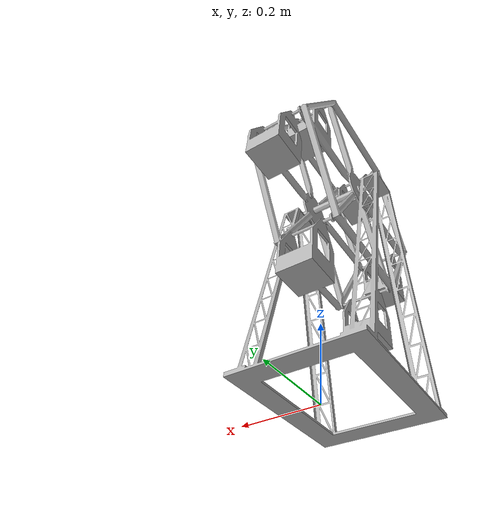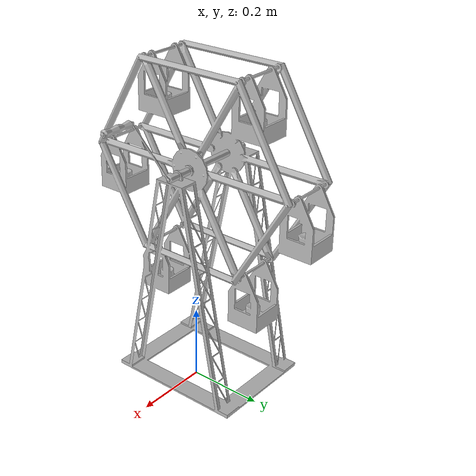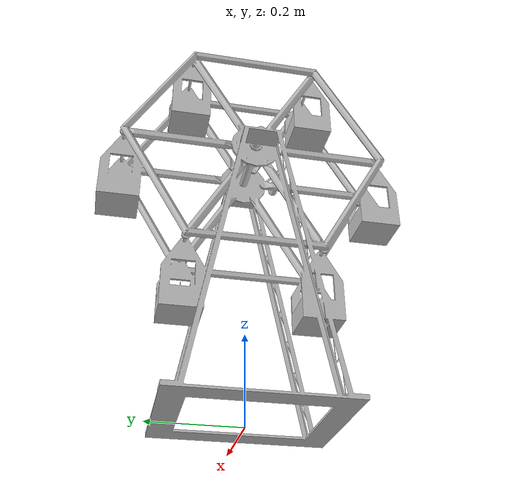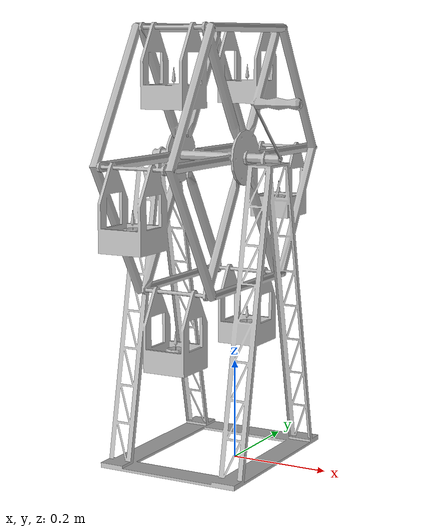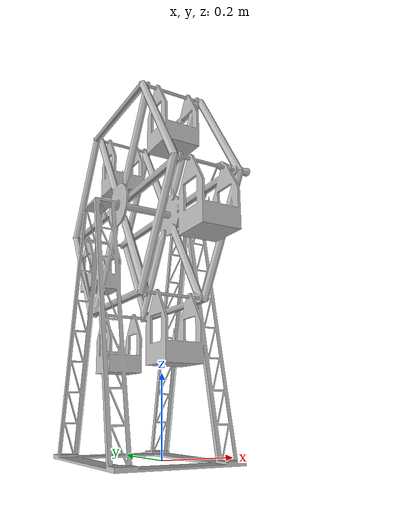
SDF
<?xml version='1.0'?>
<sdf version='1.4'>
  <model name='s__1866'>
    <pose>0 0 0 0 0 0</pose>
    <static>true</static>
    <link name='link'>
      <collision name='collision'>
        <pose>0 0 0 0 0 0</pose>
        <geometry>
          <box>
            <size>0.4 0.68 2</size>
          </box>
        </geometry>
      </collision>
      <visual name='visual'>
        <pose>0 0 0 0 0 0</pose>
        <geometry>
          <mesh><uri>model://s__1866/s__1866.dae</uri></mesh>
        </geometry>
      </visual>
    </link>
  </model>
</sdf>
